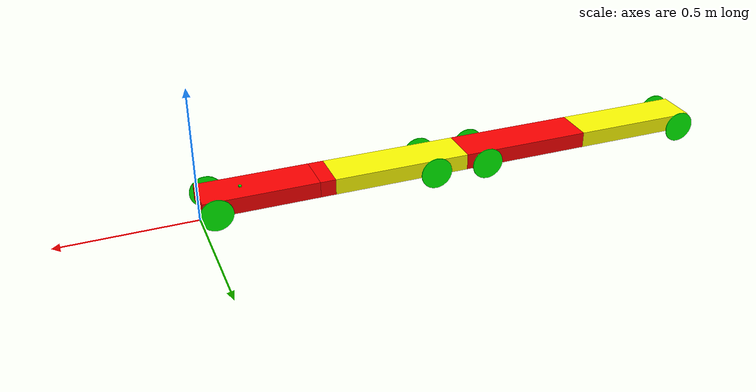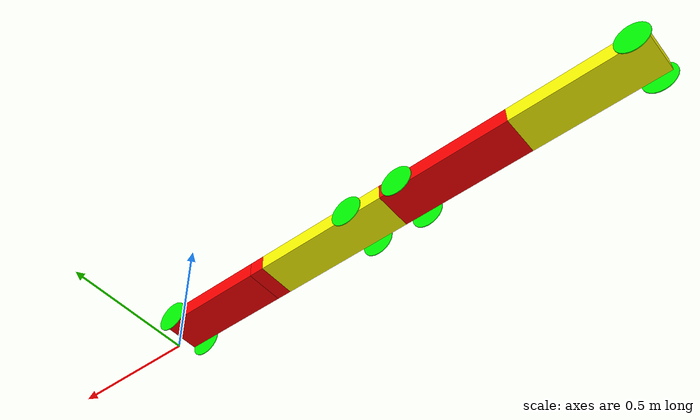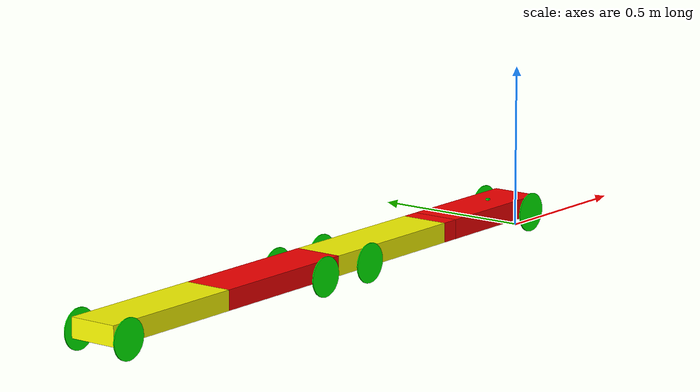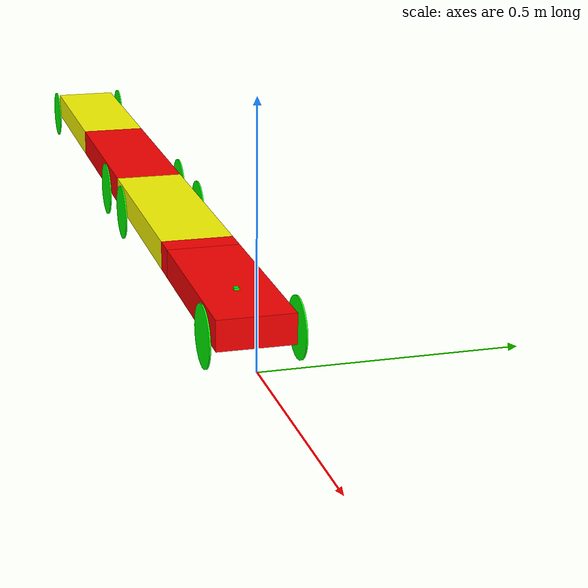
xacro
<?xml version="1.0"?>
<robot xmlns:xacro="http://www.ros.org/wiki/xacro" name="testbot">

  <!-- PROPERTY LIST -->
    <xacro:property name="scaling" value="3" />
    <xacro:property name="module_length0" value="${scaling * 0.14}" />
    <xacro:property name="module_length1" value="${scaling * 0.019}" />
    <xacro:property name="module_length2" value="${scaling * 0.171}" />
    <xacro:property name="module_length3" value="${scaling * 0.164}" />
    <xacro:property name="module_length4" value="${scaling * 0.159}" />
    <xacro:property name="module_width" value="${scaling * 0.05}" />
    <xacro:property name="module_height" value="${scaling * 0.02}" />
    <xacro:property name="wheel_radius" value="${scaling * 0.02}" />
    <xacro:property name="wheel_thickness" value="${scaling * 0.001}" />
    <xacro:property name="dist_wheel_joint" value="${scaling * 0.005}" />
    <xacro:property name="wheel_mass" value="${scaling * scaling * scaling * 0.02}" />
    <xacro:property name="module_mass" value="${scaling * scaling * scaling * 0.2}" />

<!-- Colors -->
  <material name="yellow">
    <color rgba="1 1 0 1"/>
  </material>

  <material name="red">
    <color rgba="1 0 0 1"/>
  </material>

  <material name="green">
    <color rgba="0 1 0 1" />
  </material>

  <link name="module_0">
    <inertial>
      <origin xyz="${-module_length0 / 2} 0 0" rpy="${pi/2} 0 0"/>
      <mass value="${module_mass}"/>
      <inertia  ixx="${module_mass * (module_height * module_height + module_width * module_width)/12}" ixy="0" ixz="0"
                iyy="${module_mass * (module_length0 * module_length0 + module_width * module_width)/12}" iyz="0"
                izz="${module_mass * (module_height * module_height + module_length0 * module_length0)/12}" />
    </inertial>
    <visual>
      <geometry>
        <box size="${module_length0} ${module_width} ${module_height}"/>
      </geometry>
      <origin xyz="${-module_length0 / 2} 0 0" rpy="0 0 0"/>
      <material name="red"/>
    </visual>
    <collision>
      <geometry>
        <box size="${module_length0} ${module_width} ${module_height}"/>
      </geometry>
      <origin xyz="${-module_length0 / 2} 0 0" rpy="0 0 0"/>
    </collision>
  </link>

  <gazebo reference="module_0">
      <material>Gazebo/Red</material>
  </gazebo>

  <link name="module_1">
    <inertial>
      <origin xyz="${-module_length1 / 2} 0 0" rpy="${pi/2} 0 0"/>
      <mass value="${module_mass}"/>
      <inertia  ixx="${module_mass * (module_height * module_height + module_width * module_width)/12}" ixy="0" ixz="0"
                iyy="${module_mass * (module_length1 * module_length1 + module_width * module_width)/12}" iyz="0"
                izz="${module_mass * (module_height * module_height + module_length1 * module_length1)/12}" />
    </inertial>
    <visual>
      <geometry>
        <box size="${module_length1} ${module_width} ${module_height}"/>
      </geometry>
      <origin xyz="${-module_length1 / 2} 0 0" rpy="0 0 0"/>
      <material name="red"/>
    </visual>
    <collision>
      <geometry>
        <box size="${module_length1} ${module_width} ${module_height}"/>
      </geometry>
      <origin xyz="${-module_length1 / 2} 0 0" rpy="0 0 0"/>
    </collision>
  </link>

  <gazebo reference="module_1">
      <material>Gazebo/Red</material>
  </gazebo>

<!-- Macros -->

  <xacro:macro name="module" params="number length parent_length">
    <link name="module_${number}">
      <inertial>
        <origin xyz="${-length / 2} 0 0" rpy="${pi/2} 0 0"/>
        <mass value="${module_mass}"/>
        <inertia  ixx="${module_mass * (module_height * module_height + module_width * module_width)/12}" ixy="0" ixz="0"
                  iyy="${module_mass * (length * length + module_width * module_width)/12}" iyz="0"
                  izz="${module_mass * (module_height * module_height + length * length)/12}" />
      </inertial>
      <visual>
        <geometry>
          <box size="${length} ${module_width} ${module_height}"/>
        </geometry>
        <origin xyz="${-length / 2} 0 0" rpy="0 0 0"/>
        <xacro:if value="${number%2 == 1}">
          <material name="red"/>
        </xacro:if>
        <xacro:if value="${number%2 == 0}">
          <material name="yellow"/>
        </xacro:if>
      </visual>
      <collision>
        <geometry>
          <box size="${length} ${module_width} ${module_height}"/>
        </geometry>
        <origin xyz="${-length / 2} 0 0" rpy="0 0 0"/>
      </collision>
    </link>

    <gazebo reference="module_${number}">
      <xacro:if value="${number%2 == 1}">
        <material>Gazebo/Red</material>
      </xacro:if>
      <xacro:if value="${number%2 == 0}">
        <material>Gazebo/Yellow</material>
      </xacro:if>
    </gazebo>

    <joint name="joint${number-1}" type="revolute">
      <limit lower="-1.5708" upper="1.5708" effort="10" velocity="7.5" />
      <parent link="module_${number - 1}" />
      <child link="module_${number}" />
      <origin xyz="${-parent_length} 0 0" />
      <axis xyz="0 0 1" />
    </joint>

    <transmission name="tran${number - 1}">
        <type>transmission_interface/SimpleTransmission</type>
        <joint name="joint${number - 1}">
          <hardwareInterface>hardware_interface/EffortJointInterface</hardwareInterface>
        </joint>
        <actuator name="motor${number - 1}">
          <mechanicalReduction>1</mechanicalReduction>
        </actuator>
    </transmission>

  </xacro:macro>

  <xacro:macro name="wheel" params="number module position">
    <link name="wheel_${number}">
      <inertial>
        <xacro:if value="${number%2 == 1}">
          <origin xyz="0 ${wheel_thickness / 2} 0" rpy="${pi / 2} 0 0" />
        </xacro:if>
        <xacro:if value="${number%2 == 0}">
          <origin xyz="0 -${wheel_thickness / 2} 0" rpy="${pi / 2} 0 0" />
        </xacro:if>
        <mass value="${wheel_mass}"/>
        <inertia  ixx="${wheel_mass * (3 * wheel_radius * wheel_radius + 0.005*0.005)/12}" ixy="0" ixz="0"
                  iyy="${wheel_mass * (3 * wheel_radius * wheel_radius + 0.005*0.005)/12}" iyz="0"
                  izz="${wheel_mass * wheel_radius * wheel_radius /2}" />
      </inertial>
      <visual>
        <geometry>
          <cylinder length="${wheel_thickness}" radius="${wheel_radius}" />
        </geometry>
        <material name="green"/>
        <xacro:if value="${number%2 == 1}">
          <origin xyz="0 ${wheel_thickness / 2} 0" rpy="${pi / 2} 0 0" />
        </xacro:if>
        <xacro:if value="${number%2 == 0}">
          <origin xyz="0 -${wheel_thickness / 2} 0" rpy="${pi / 2} 0 0" />
        </xacro:if>
      </visual>
      <collision>
        <geometry>
          <cylinder length="${wheel_thickness}" radius="${wheel_radius}" />
        </geometry>
        <xacro:if value="${number%2 == 1}">
          <origin xyz="0 ${wheel_thickness / 2} 0" rpy="${pi / 2} 0 0" />
        </xacro:if>
        <xacro:if value="${number%2 == 0}">
          <origin xyz="0 -${wheel_thickness / 2} 0" rpy="${pi / 2} 0 0" />
        </xacro:if>
      </collision>
    </link>

    <joint name="wheeljoint_${number}" type="continuous">
      <parent link="module_${module}" />
      <child link="wheel_${number}" />
      <xacro:if value="${number%2 == 1}">
        <origin xyz="${position} ${module_width / 2 + 3*0.004} -${dist_wheel_joint}"/>
      </xacro:if>
      <xacro:if value="${number%2 == 0}">
        <origin xyz="${position} -${module_width / 2 + 3*0.004} -${dist_wheel_joint}"/>
      </xacro:if>
      <axis xyz="0 1 0" />
    </joint>

    <gazebo reference="wheel_${number}">
        <material>Gazebo/Green</material>
        <mu1 value="1.0"/>
    </gazebo>

    <transmission name="wheeltrans_${number}">
      <type>transmission_interface/SimpleTransmission</type>
      <joint name="wheeljoint_${number}">
        <hardwareInterface>hardware_interface/EffortJointInterface</hardwareInterface>
      </joint>
      <actuator name="wheeljoint_${number}_motor">
        <mechanicalReduction>1</mechanicalReduction>
      </actuator>
    </transmission>

  </xacro:macro>

  <!-- ros_control plugin -->
<gazebo>
  <plugin name="gazebo_ros_control" filename="libgazebo_ros_control.so">
    <robotNamespace>/testbot</robotNamespace>
  </plugin>
</gazebo>

<transmission name="tran1">
    <type>transmission_interface/SimpleTransmission</type>
    <joint name="joint1">
      <hardwareInterface>hardware_interface/EffortJointInterface</hardwareInterface>
    </joint>
    <actuator name="motor1">
      <mechanicalReduction>1</mechanicalReduction>
    </actuator>
</transmission>

<!-- Robot -->

<!-- BASE-FOOTPRINT -->
<!-- base_footprint is a fictitious link(frame) that is on the ground right below module_1 origin -->
  <link name="base_footprint">
     <visual>
       <origin xyz="0 0 0" rpy="0 0 0" />
       <geometry>
         <box size="0.001 0.001 0.001" />
       </geometry>
     </visual>
  </link>

  <joint name="fixed" type="fixed">
    <parent link="base_footprint"/>
    <child link="module_0"/>
    <origin xyz="0 0 0.075" rpy="0 0 0" />
  </joint>

    <joint name="joint_roll1" type="continuous">
      <parent link="module_0" />
      <child link="module_1" />
      <origin xyz="-${module_length0} 0 0" />
      <axis xyz="1 0 0" />
    </joint>

  <xacro:module number="2" length="${module_length2}" parent_length="${module_length1}"/>
  <xacro:module number="3" length="${module_length3}" parent_length="${module_length2}"/>
  <xacro:module number="4" length="${module_length4}" parent_length="${module_length3}"/>

  <xacro:wheel number="1" module="0" position="${- scaling*0.015}" />
  <xacro:wheel number="2" module="0" position="${- scaling*0.015}" />

  <xacro:wheel number="3" module="2" position="${-module_length2 + scaling*0.043}" />
  <xacro:wheel number="4" module="2" position="${-module_length2 + scaling*0.043}" />

  <xacro:wheel number="5" module="3" position="${- scaling*0.026}" />
  <xacro:wheel number="6" module="3" position="${- scaling*0.026}" />

  <xacro:wheel number="7" module="4" position="${-module_length4 + scaling*0.015}" />
  <xacro:wheel number="8" module="4" position="${-module_length4 + scaling*0.015}" />

  <link name="imu_link">
    <visual>
      <geometry>
        <box size="0.01 0.01 0.01"/>
      </geometry>
      <origin xyz="0 0 0" rpy="0 0 0"/>
      <material name="green"/>
    </visual>
  </link>

  <joint name="fixed_imu" type="fixed">
    <parent link="module_0"/>
    <child link="imu_link"/>
    <origin xyz="-0.15 0 0.03" rpy="0 0 0" />
  </joint>

  <gazebo>
    <plugin name="imu" filename="libhector_gazebo_ros_imu.so">
      <updateRate>50.0</updateRate>
      <robotNamespace>/testbot</robotNamespace>
      <bodyName>imu_link</bodyName>
      <topicName>imu</topicName>
      <rateGaussianNoise>0.001 0.001 0.001</rateGaussianNoise>
      <accelGaussianNoise>0.001 0.001 0.001</accelGaussianNoise>
      <gaussianNoise>0.001</gaussianNoise>
    </plugin>
  </gazebo>

</robot>
